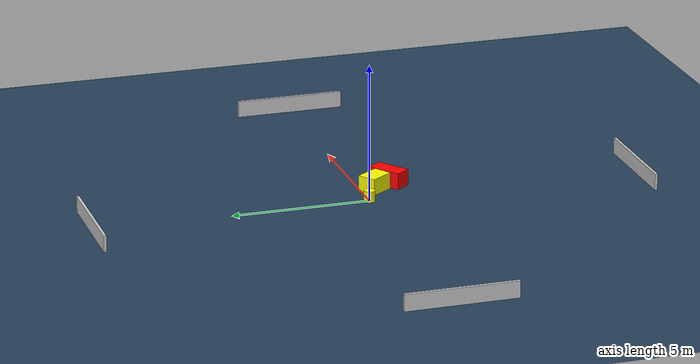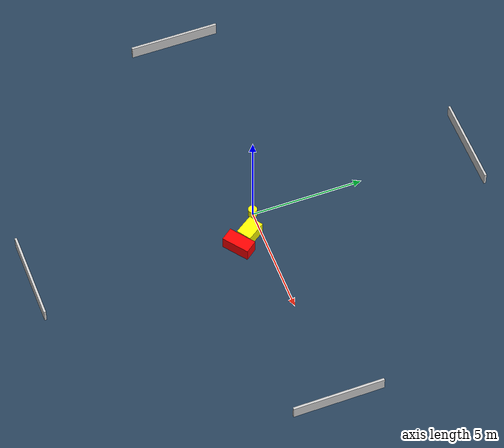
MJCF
<?xml version="1.0" ?>
<mujoco model="generated_environment">
  <option timestep="0.01" integrator="RK4" cone="elliptic"/>
  <default>
    <geom density="1"/>
  </default>
  <asset>
    <texture builtin="gradient" height="3072" name="skybox" rgb1="0.3 0.5 0.7" rgb2="0 0 0" type="skybox" width="512"/>
    <texture builtin="checker" height="300" name="groundplane" rgb1="0.2 0.3 0.4" rgb2="0.1 0.2 0.3" type="2d" width="300"/>
    <material name="groundplane" reflectance="0.2" texrepeat="5 5" texture="groundplane"/>
  </asset>
  <worldbody>
    <light dir="0 0 -1" directional="true" pos="0 0 1.5"/>
    <geom condim="3" friction="0.5 0.005 0.001" material="groundplane" name="floor" pos="0 0 0" size="0 0 0.05" type="plane"/>
    <body name="walls">
      <geom name="wall_1" condim="4" pos="-10.0 0.0 0.3" rgba="0.800000011920929 0.800000011920929 0.800000011920929 1.0" size="0.05 2.0 0.3" type="box"/>
      <geom name="wall_2" condim="4" pos="10.0 0.0 0.3" rgba="0.800000011920929 0.800000011920929 0.800000011920929 1.0" size="0.05 2.0 0.3" type="box"/>
      <geom name="wall_3" condim="4" pos="0.0 -10.0 0.3" rgba="0.800000011920929 0.800000011920929 0.800000011920929 1.0" size="2.0 0.05 0.3" type="box"/>
      <geom name="wall_4" condim="4" pos="0.0 10.0 0.3" rgba="0.800000011920929 0.800000011920929 0.800000011920929 1.0" size="2.0 0.05 0.3" type="box"/>
    </body>
    <body name="robot">
      <joint name="joint_x" type="slide" pos="0 0 0" axis="1 0 0"/>
      <joint name="joint_y" type="slide" pos="0 0 0" axis="0 1 0"/>
      <geom name="robot" type="cylinder" pos="0.0 0.0 0.2" size="0.2 0.2 0.0" mass="5.0" friction="1.0 0.005 0.0001" condim="4" rgba="1.0 1.0 0.0 1.0"/>
    </body>
    <body name="obstacle_1_movable">
      <geom name="obstacle_1_movable" condim="4" pos="0.9903445983129777 -0.49863611117520923 0.3" euler="0 0 213.9846149071823" friction="0.0 0.005 0.001" rgba="1.0 1.0 0.0 1.0" size="0.33950699429866044 0.4656662663279914 0.3" type="box" mass="0.1"/>
      <joint type="free"/>
    </body>
    <body name="obstacle_2_static">
      <geom name="obstacle_2_static" condim="4" pos="1.4392440879113684 -1.1649432192061258 0.3" euler="0 0 306.8831110927595" friction="0.0 0.005 0.001" rgba="1.0 0.0 0.0 1.0" size="0.3040061244925873 0.6273065126295201 0.3" type="box"/>
    </body>
  </worldbody>
  <actuator>
    <motor name="actuator_x" joint="joint_x" gear="1" ctrlrange="-1 1"/>
    <motor name="actuator_y" joint="joint_y" gear="1" ctrlrange="-1 1"/>
  </actuator>
</mujoco>
